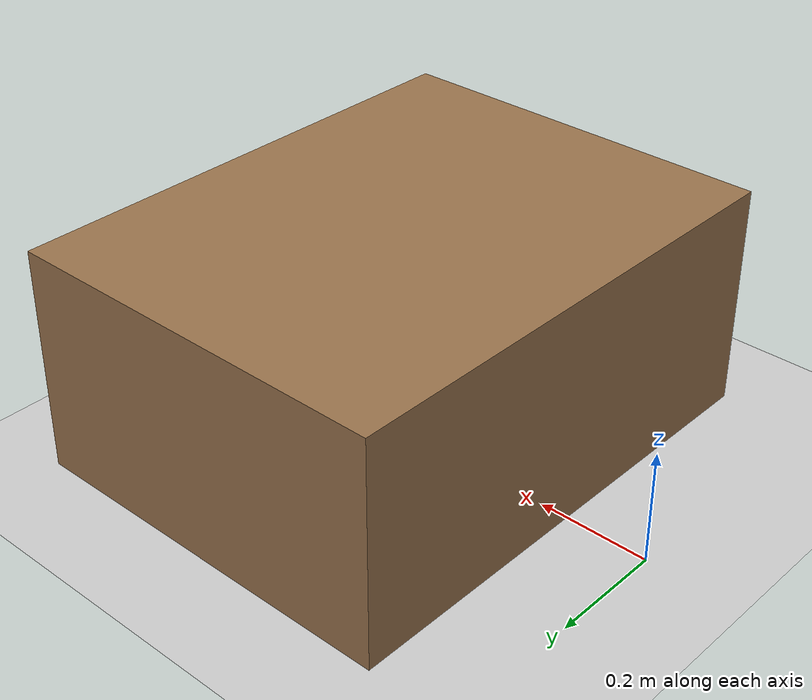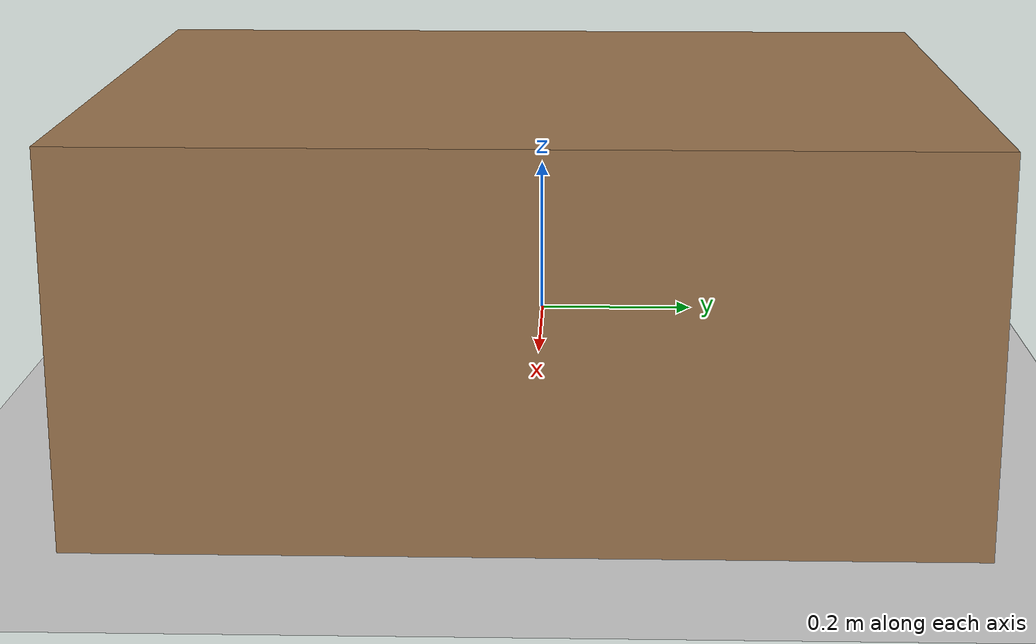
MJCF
<mujoco model="rtp_scene_base">
  <option integrator="implicitfast"/>
  <compiler angle="radian"/>

  <visual>
    <global offwidth="1280" offheight="720"/>
  </visual>

  <worldbody>
    <light name="top" pos="0.5 0 1.5" dir="0 0 -1" diffuse="0.8 0.8 0.8"/>
    <geom name="floor" type="plane" size="2 2 0.1" rgba="0.8 0.8 0.8 1"/>

    <!-- Table: top surface at z = table_surface_z (see configs/sim.yaml). -->
    <body name="table" pos="0.5 0 0.2">
      <geom name="table_top" type="box" size="0.35 0.45 0.2" rgba="0.6 0.45 0.3 1"/>
    </body>

    <!-- Camera used for perception occlusion (mj_ray) and rendering. -->
    <camera name="scene_cam" pos="0.5 -0.9 0.9" xyaxes="1 0 0 0 0.5 0.8"/>
  </worldbody>
</mujoco>
